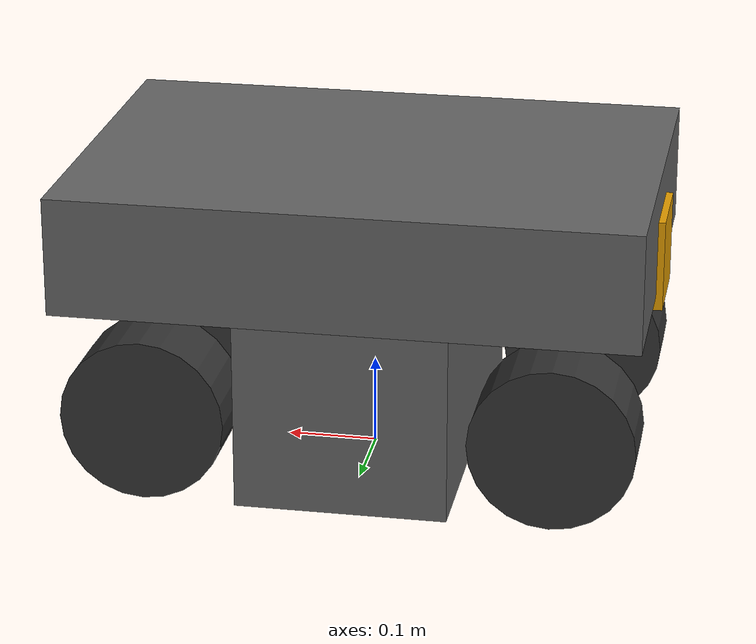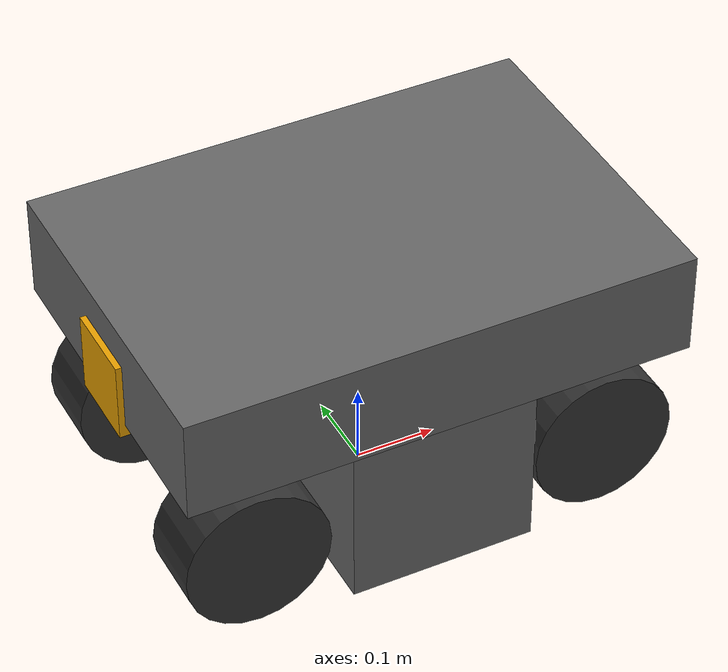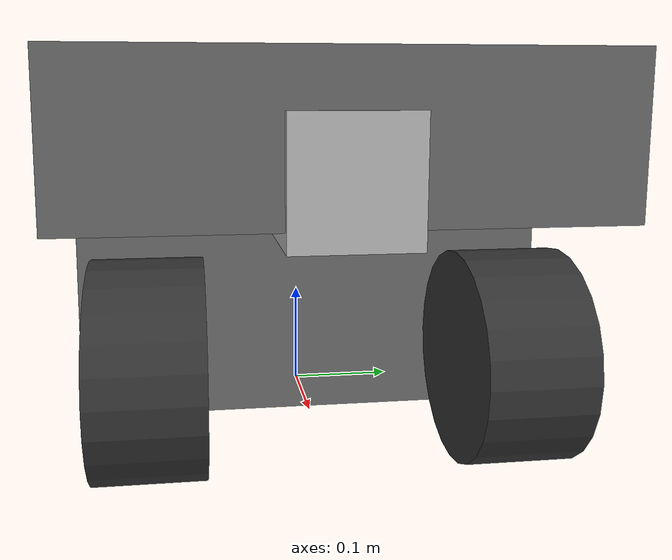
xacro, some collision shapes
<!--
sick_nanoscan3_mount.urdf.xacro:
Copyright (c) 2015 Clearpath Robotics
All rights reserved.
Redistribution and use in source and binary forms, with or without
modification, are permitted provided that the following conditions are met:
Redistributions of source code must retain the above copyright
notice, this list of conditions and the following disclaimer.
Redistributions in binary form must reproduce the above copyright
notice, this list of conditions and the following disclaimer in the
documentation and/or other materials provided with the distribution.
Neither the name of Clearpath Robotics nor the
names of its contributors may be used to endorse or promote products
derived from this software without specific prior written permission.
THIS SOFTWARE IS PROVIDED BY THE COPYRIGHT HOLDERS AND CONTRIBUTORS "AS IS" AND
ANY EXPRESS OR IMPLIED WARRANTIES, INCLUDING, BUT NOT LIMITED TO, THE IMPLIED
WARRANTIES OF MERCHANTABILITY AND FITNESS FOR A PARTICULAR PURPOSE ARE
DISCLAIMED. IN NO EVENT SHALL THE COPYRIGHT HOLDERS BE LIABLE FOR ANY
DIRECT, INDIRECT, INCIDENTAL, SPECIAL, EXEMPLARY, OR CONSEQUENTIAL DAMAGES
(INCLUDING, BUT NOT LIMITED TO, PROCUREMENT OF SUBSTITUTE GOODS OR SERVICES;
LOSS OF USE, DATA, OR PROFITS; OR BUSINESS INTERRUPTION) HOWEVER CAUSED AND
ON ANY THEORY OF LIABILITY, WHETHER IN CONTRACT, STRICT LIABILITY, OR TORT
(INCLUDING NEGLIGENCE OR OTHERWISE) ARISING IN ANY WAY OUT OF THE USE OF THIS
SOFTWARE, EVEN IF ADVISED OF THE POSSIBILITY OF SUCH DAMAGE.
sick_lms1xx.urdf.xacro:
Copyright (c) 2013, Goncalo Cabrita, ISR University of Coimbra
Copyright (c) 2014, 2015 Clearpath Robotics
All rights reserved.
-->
<?xml version="1.0"?>
<robot name="herox_amr" xmlns:xacro="http://ros.org/wiki/xacro">
    <xacro:property name="PI" value="3.1415926535897931" />

    <xacro:property name="wheel_radius" value="0.0900" />
    <xacro:property name="wheel_width" value="0.0900" />
    <xacro:property name="wheel_y_offset" value="0.1500" />
    <xacro:property name="wheel_x_offset" value="0.2215" />

    <xacro:include filename="$(find herox_description)/urdf/accessories/sick_nanoscan3_mount.urdf.xacro" />

    <material name="dark_grey"><color rgba="0.2 0.2 0.2 1.0" /></material>
    <material name="light_grey"><color rgba="0.4 0.4 0.4 1.0" /></material>
    <material name="red"><color rgba="0.8 0.0 0.0 1.0" /></material>
    <material name="white"><color rgba="0.9 0.9 0.9 1.0" /></material>
    <material name="yellow"><color rgba="0.8 0.8 0.0 1.0" /></material>
    <material name="black"><color rgba="0.15 0.15 0.15 1.0" /></material>

    <xacro:macro name="wheel" params="prefix side *joint_pose">
        <link name="${prefix}_${side}_wheel_link">
            <collision>
                <origin xyz="0 0 0" rpy="${PI/2} 0 0"/>
                <geometry>
                    <cylinder radius="${wheel_radius}" length="${wheel_width}"/>
                </geometry>
          </collision>
            <visual>
                <origin xyz="0 0 0" rpy="${PI/2} 0 0"/>
                <geometry>
                    <cylinder radius="${wheel_radius}" length="${wheel_width}"/>
                </geometry>
                <material name="dark_grey"/>
            </visual>
          <inertial>
            <origin xyz="0 0 0" rpy="0 0 0"/>
            <mass value="5.0"/>
            <inertia
              ixx="3.3212e-3" ixy="0" ixz="0"
              iyy="6.6424e-3" iyz="0"
              izz="3.3212e-3"/>
          </inertial>
        </link>

        <joint name="${prefix}_${side}_wheel" type="continuous">
          <parent link="base_link"/>
          <child link="${prefix}_${side}_wheel_link" />
          <xacro:insert_block name="joint_pose" />
          <axis xyz="0 1 0" />
        </joint>

        <!-- Transmission might be needed for simulation, on the real robot this
             is handled by the driver configuration though -->
        <transmission name="${prefix}_${side}_wheel_trans">
          <type>transmission_interface/SimpleTransmission</type>
          <joint name="${prefix}_${side}_wheel">
            <hardwareInterface>hardware_interface/VelocityJointInterface</hardwareInterface>
          </joint>
          <actuator name="${prefix}_${side}_actuator">
            <mechanicalReduction>1</mechanicalReduction>
          </actuator>
        </transmission>
    </xacro:macro>

    <link name="base_link"/>
    <link name="chassis_top_link">
        <collision>
            <origin xyz="0 0 0" rpy="0 0 0"/>
            <geometry>
                <box size="0.630 0.435 0.130" />
            </geometry>
        </collision>
        <visual>
            <origin xyz="0 0 0" rpy="0 0 0"/>
            <geometry>
                <box size="0.630 0.435 0.130" />
            </geometry>
            <material name="light_grey" />
        </visual>
        <inertial>
            <origin xyz="0 0 0" rpy="0 0 0"/>
            <mass value="10.0"/>
            <inertia
                ixx="4.4744" ixy="0.03098" ixz="0.003647"
                iyy="7.1624" iyz="0.1228"
                izz="4.6155"/>
        </inertial>
    </link>
    <link name="chassis_bottom_link">
        <collision>
            <origin xyz="0 0 0" rpy="0 0 0"/>
            <geometry>
                <box size="0.230 0.435 0.205" />
            </geometry>
        </collision>
        <visual>
            <origin xyz="0 0 0" rpy="0 0 0"/>
            <geometry>
                <box size="0.230 0.435 0.205" />
            </geometry>
            <material name="light_grey" />
        </visual>
        <inertial>
            <origin xyz="0 0 0" rpy="0 0 0"/>
            <mass value="20.0"/>
            <inertia
                ixx="4.4744" ixy="0.03098" ixz="0.003647"
                iyy="7.1624" iyz="0.1228"
                izz="4.6155"/>
        </inertial>
    </link>

    <joint name="chassis_top_link_joint" type="fixed">
        <origin xyz="0 0 0.280" rpy="0 0 0"/>
        <parent link="base_link"/>
        <child link="chassis_top_link"/>
    </joint>

    <joint name="chassis_bottom_link_joint" type="fixed">
        <origin xyz="0 0 0.1125" rpy="0 0 0"/>
        <parent link="base_link"/>
        <child link="chassis_bottom_link"/>
    </joint>

    <!-- Wheels -->
    <xacro:wheel prefix="front" side="left">
        <origin xyz="${wheel_x_offset} ${wheel_y_offset} ${wheel_radius}" rpy="0 0 0" />
    </xacro:wheel>
    <xacro:wheel prefix="front" side="right">
        <origin xyz="${wheel_x_offset} ${-(wheel_y_offset)} ${wheel_radius}" rpy="0 0 0" />
    </xacro:wheel>
    <xacro:wheel prefix="rear" side="left">
        <origin xyz="${-(wheel_x_offset)} ${wheel_y_offset} ${wheel_radius}" rpy="0 0 0" />
    </xacro:wheel>
    <xacro:wheel prefix="rear" side="right">
        <origin xyz="${-(wheel_x_offset)} ${-(wheel_y_offset)} ${wheel_radius}" rpy="0 0 0" />
    </xacro:wheel>

    <!-- Lasers -->
    <xacro:sick_nanoscan3_mount prefix="front"
                 topic="front/scan"
                 location="1" />

    <xacro:sick_nanoscan3_mount prefix="rear"
                 topic="rear/scan"
                 location="-1" />

    <!-- Camera -->
    <link name="camera_link" />
    <joint name="camera_joint" type="fixed">
      <origin xyz="-0.120 0 0.360" rpy="${-PI/2} 0 ${PI/2}"/>
      <parent link="base_link"/>
      <child link="camera_link"/>
    </joint>

    <!-- Bring in simulation data for Gazebo -->
    <xacro:include filename="$(find herox_description)/urdf/herox.gazebo" />
</robot>

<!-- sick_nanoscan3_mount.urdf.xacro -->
<!-- Original file modified for SICK nanoScan3. -->

<robot xmlns:xacro="http://ros.org/wiki/xacro">

  <xacro:include filename="$(find lms1xx)/urdf/sick_lms1xx.urdf.xacro" />

  <xacro:macro name="sick_nanoscan3_mount" params="prefix topic location">

    <!-- Height of laser scanners (center point) above ground (base link) -->
    <xacro:property name="laser_height" value="0.200" />

    <!-- Offset of laser scanners (center point) from center of vehicle (base link) -->
    <!-- NOTE: This measurement is rough for now! -->
    <!-- NOTE: Z-offset is not modeled yet! -->
    <!-- NOTE: Assuming symmetrical placement of lasers -->
    <xacro:property name="laser_offset" value="0.270" />

    <xacro:sick_lms1xx frame="${prefix}_laser" topic="${topic}" max_range="10.0" min_angle="-2.3998" max_angle="2.3998" update_rate="33.0"/>

    <joint name="${prefix}_laser_joint" type="fixed">
        <!-- This offset is from the base_link to the laser scanner's focal point -->
	<origin xyz="${location * laser_offset} 0 ${laser_height}" rpy="${PI} 0 ${PI/2 - (location * PI/2)}" />
      <parent link="base_link" />
      <child link="${prefix}_laser" />
    </joint>

  </xacro:macro>

</robot>

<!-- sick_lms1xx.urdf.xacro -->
<robot xmlns:xacro="http://www.ros.org/wiki/xacro">

  <xacro:macro name="sick_lms1xx" params="frame:=laser topic:=scan sample_size:=720 update_rate:=5
               min_angle:=-2.35619 max_angle:=2.35619 min_range:=0.1 max_range:=30.0 robot_namespace:=/" >
    <link name="${frame}">
      <inertial>
        <mass value="1.1" />
        <origin xyz="0 0 0" />
        <inertia ixx="${0.0833333 * 1.1 * (0.102*0.102 + 0.152*0.152)}" ixy="0.0" ixz="0.0"
          iyy="${0.0833333 * 1.1 * (0.105*0.105 + 0.152*0.152)}" iyz="0.0"
          izz="${0.0833333 * 1.1 * (0.105*0.105 + 0.102*0.102)}" />
      </inertial>
      <visual>
        <origin xyz="0 0 0" rpy="0 0 0" />
        <geometry>
          <!-- Origin of this mesh is the focal point of the LIDAR. -->
          <mesh filename="file://$(find lms1xx)/meshes/sick-lms1xx.dae" />
        </geometry>
      </visual>
      <collision>
        <origin xyz="0 0 -0.05" rpy="0 0 0" />
        <geometry>
          <box size="0.105 0.1 0.1" />
        </geometry>
      </collision>
    </link>

    <gazebo reference="${frame}">
      <turnGravityOff>true</turnGravityOff>
      <sensor type="ray" name="${frame}">
        <pose>0 0 0 0 0 0</pose>
        <visualize>false</visualize>
        <update_rate>${update_rate}</update_rate>
        <ray>
          <scan>
            <horizontal>
              <samples>${sample_size}</samples>
              <resolution>1</resolution>
              <min_angle>${min_angle}</min_angle>
              <max_angle>${max_angle}</max_angle>
            </horizontal>
          </scan>
          <range>
            <min>${min_range}</min>
            <max>${max_range}</max>
            <resolution>0.01</resolution>
          </range>
          <noise>
            <type>gaussian</type>
            <mean>0.0</mean>
            <stddev>0.001</stddev>
          </noise>
        </ray>
        <plugin name="${frame}_scan" filename="libgazebo_ros_ray_sensor.so">
          <ros>
            <remapping>~/out:=${topic}</remapping>
            <qos>
              <topic name="${topic}">
                  <publisher>
                      <reliability>best_effort</reliability>
                  </publisher>
              </topic>
            </qos>
          </ros>
          <frame_name>${frame}</frame_name>
          <robot_namespace>${robot_namespace}</robot_namespace>
          <output_type>sensor_msgs/LaserScan</output_type>
        </plugin>
      </sensor>
    </gazebo>

  </xacro:macro>
</robot>
